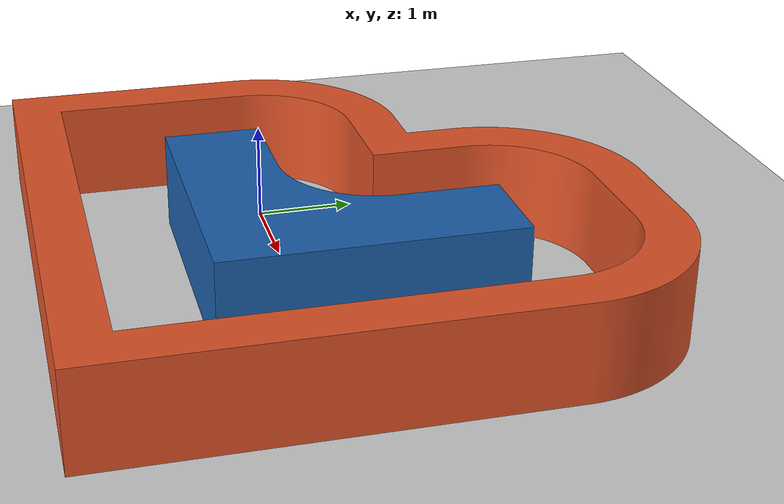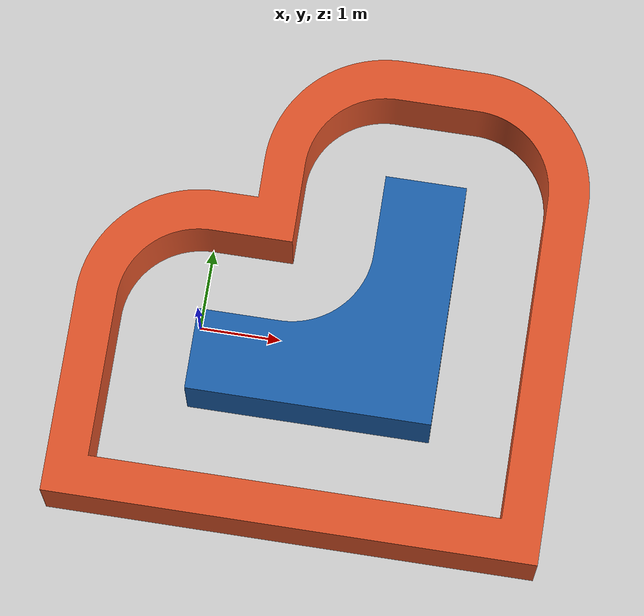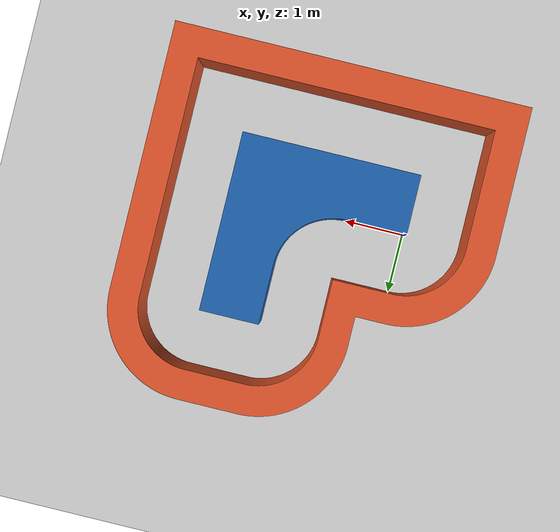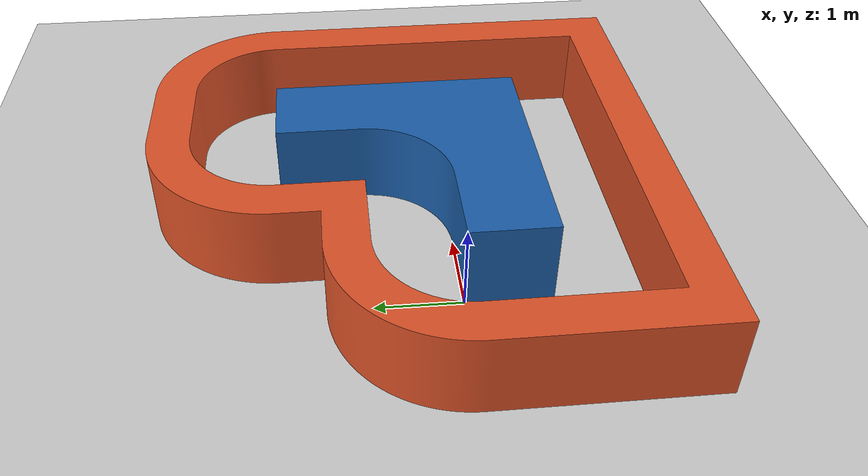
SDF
<sdf version='1.4'>
  <world name='default'>
    <!-- A global light source -->
    <include>
      <uri>model://sun</uri>
    </include>

    <!-- A ground plane -->
    <include>
      <uri>model://ground_plane</uri>
    </include>

    <physics type="ode">
      <real_time_update_rate>1000.0</real_time_update_rate>
      <max_step_size>0.001</max_step_size>
      <real_time_factor>1</real_time_factor>
      <ode>
        <solver>
          <type>quick</type>
          <iters>150</iters>
          <precon_iters>0</precon_iters>
          <sor>1.400000</sor>
          <use_dynamic_moi_rescaling>1</use_dynamic_moi_rescaling>
        </solver>
        <constraints>
          <cfm>0.00001</cfm>
          <erp>0.2</erp>
          <contact_max_correcting_vel>20.000000</contact_max_correcting_vel>
          <contact_surface_layer>0.01000</contact_surface_layer>
        </constraints>
      </ode>
    </physics>

    <include>
      <uri>model://Heart</uri>
    </include>

    <scene>
      <ambient>0.4 0.4 0.4 1</ambient>
      <background>0.7 0.7 0.7 1</background>
      <shadows>true</shadows>
    </scene>

    <gui fullscreen='0'>
      <camera name='user_camera'>
        <pose>0.8 0.0 12.0 0 1.5708 0</pose>
        <view_controller>orbit</view_controller>
      </camera>
    </gui>
  </world>
</sdf>

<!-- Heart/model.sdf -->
<sdf version='1.4'>
    <model name='Heart'>
      <static>1</static>
	<link name='symbol'>

        <collision name='body'>
        <pose>0 0 0 0 0 0</pose>
        <geometry>
          <mesh>
            <uri>model://Heart/meshes/heart.dae</uri>
            <scale>1 1 1</scale>
          </mesh>
        </geometry>
        <max_contacts>10</max_contacts>
        <surface>
          <bounce/>
          <friction>
            <ode/>
          </friction>
          <contact>
            <ode/>
          </contact>
        </surface>
      </collision>

      <visual name='body'>
        <pose>0 0 0 0 0 0</pose>
        <geometry>
          <mesh>
            <uri>model://Heart/meshes/heart.dae</uri>
            <scale>1 1 1</scale>
          </mesh>
        </geometry>

      </visual>
    </link>
  </model>
</sdf>
